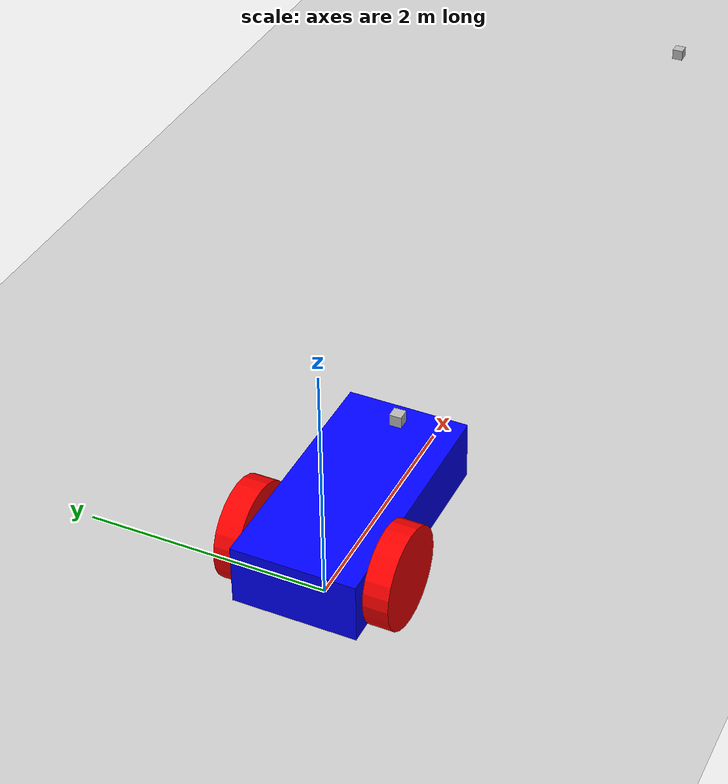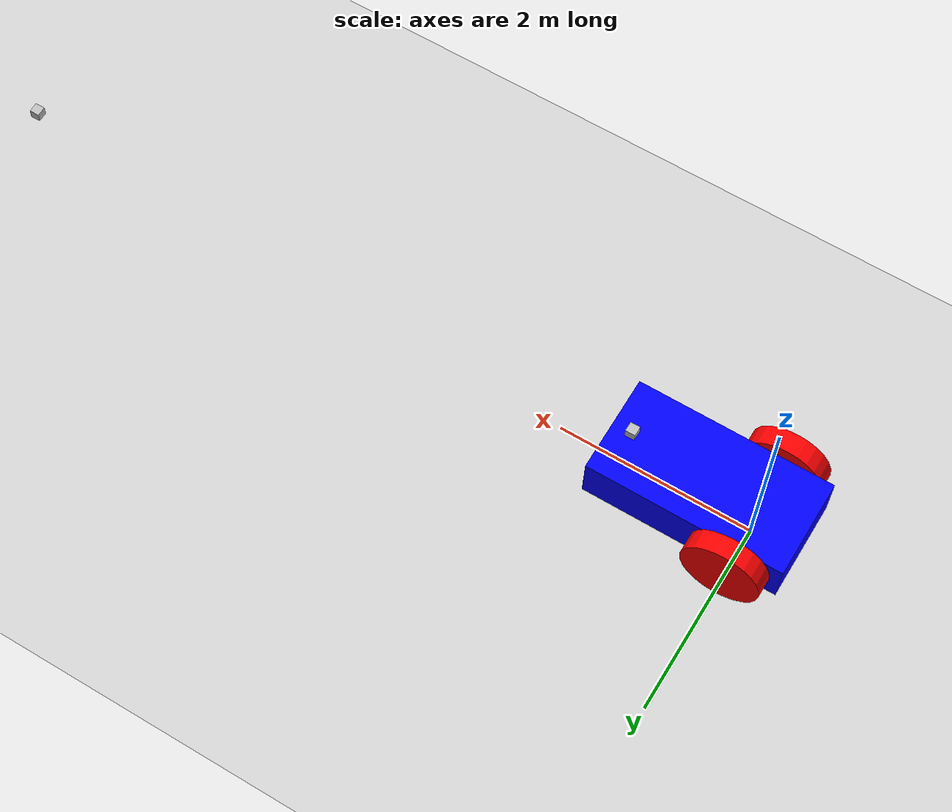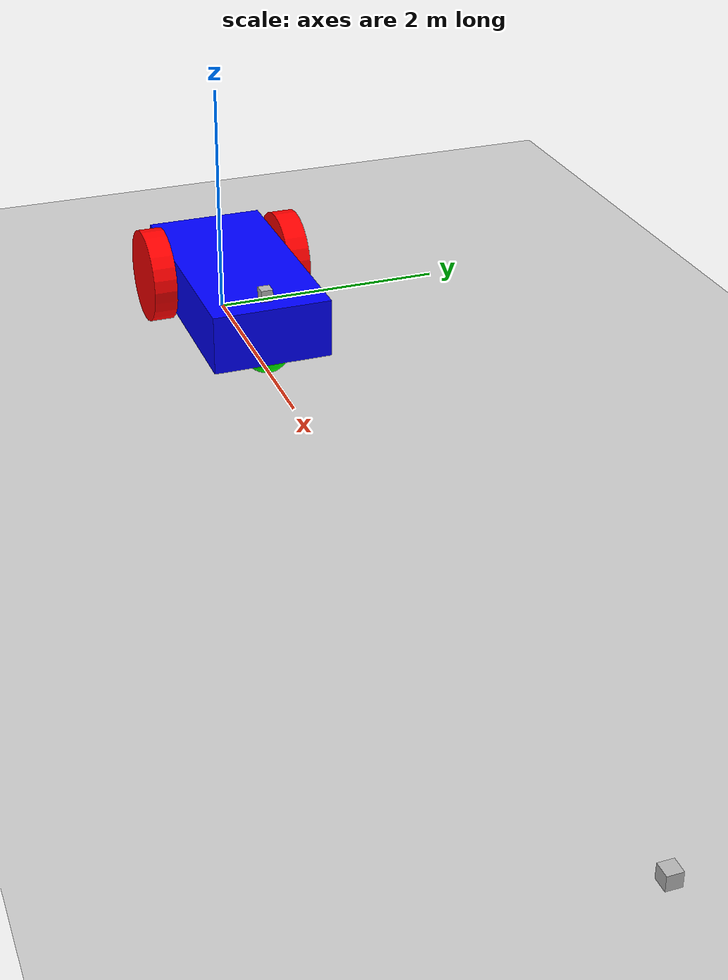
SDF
<sdf version="1.7">
 <world name="Moving_robot">
  <physics name="1ms" type="ignored">
   <max_step_size>0.001</max_step_size>
   <real_time_factor>1.0</real_time_factor>
  </physics>
  <plugin filename="libignition-gazebo-physics-system.so" name="ignition::gazebo::systems::Physics"/>
  <plugin filename="libignition-gazebo-user-commands-system.so" name="ignition::gazebo::systems::UserCommands"/>
  <plugin filename="libignition-gazebo-scene-broadcaster-system.so" name="ignition::gazebo::systems::SceneBroadcaster"/>
  <plugin filename="ignition-gazebo-sensors-system" name="ignition::gazebo::systems::Sensors">
   <render_engine>ogre2</render_engine>
  </plugin>
  <light type="directional" name="sun">
   <pose>0 0 10 0 0 0</pose>
   <diffuse>0.8 0.8 0.8 1</diffuse>
   <specular>0.2 0.2 0.2 1</specular>
   <attenuation>
    <range>1000</range>
    <constant>0.9</constant>
    <linear>0.01</linear>
    <quadratic>0.001</quadratic>
   </attenuation>
   <direction>-0.5 0.1 -0.9</direction>
  </light>
  <model name="ground_plane">
   <static>true</static>
   <link name="link">
    <collision name="collision"><geometry><plane><normal>0 0 1</normal></plane></geometry></collision>
    <visual name="visual">
     <geometry><plane><normal>0 0 1</normal><size>100 100</size></plane></geometry>
     <material>
      <ambient>0.8 0.8 0.8 1</ambient>
      <diffuse>0.8 0.8 0.8 1</diffuse>
      <specular>0.8 0.8 0.8 1</specular>
     </material>
     <plugin filename="ignition-gazebo-thermal-system" name="ignition::gazebo::systems::Thermal">
      <temperature>50.0</temperature>
     </plugin>
    </visual>
   </link>
  </model>
  <model name="rgbd_camera">
   <pose>8 0 0.5 0 0.0 3.14</pose>
   <static>true</static>
   <link name="link">
    <pose>0.05 0.05 0.05 0 0 0</pose>
    <collision name="collision"><geometry><box><size>0.1 0.1 0.1</size></box></geometry></collision>
    <visual name="visual"><geometry><box><size>0.1 0.1 0.1</size></box></geometry></visual>
    <sensor name="rgbd_camera" type="rgbd_camera">
     <camera>
      <horizontal_fov>1.047</horizontal_fov>
      <image><width>320</width><height>240</height></image>
      <clip><near>0.1</near><far>100</far></clip>
     </camera>
     <always_on>1</always_on>
     <update_rate>30</update_rate>
     <visualize>true</visualize>
     <topic>rgbd_camera</topic>
    </sensor>
   </link>
   <static>true</static>
  </model>
  <model name="camera_with_lidar">
   <pose>8 0 0.5 0 0.0 3.14</pose>
   <link name="link">
    <pose>0.05 0.05 0.05 0 0 0</pose>
    <inertial>
     <mass>0.1</mass>
     <inertia><ixx>0.000166667</ixx><iyy>0.000166667</iyy><izz>0.000166667</izz></inertia>
    </inertial>
    <collision name="collision"><geometry><box><size>0.1 0.1 0.1</size></box></geometry></collision>
    <visual name="visual"><geometry><box><size>0.1 0.1 0.1</size></box></geometry></visual>
    <sensor name="camera" type="camera">
     <camera>
      <horizontal_fov>1.047</horizontal_fov>
      <image><width>320</width><height>240</height></image>
      <clip><near>0.1</near><far>100</far></clip>
     </camera>
     <always_on>1</always_on>
     <update_rate>30</update_rate>
     <visualize>true</visualize>
     <topic>camera</topic>
    </sensor>
    <sensor name="depth_camera1" type="depth_camera">
     <update_rate>10</update_rate>
     <topic>depth_camera</topic>
     <camera>
      <horizontal_fov>1.05</horizontal_fov>
      <image><width>320</width><height>240</height><format>R_FLOAT32</format></image>
      <clip><near>0.1</near><far>100.0</far></clip>
     </camera>
    </sensor>
    <sensor name="gpu_lidar" type="gpu_lidar">
     <topic>lidar</topic>
     <update_rate>10</update_rate>
     <ray>
      <scan>
       <horizontal>
        <samples>320</samples>
        <resolution>1</resolution>
        <min_angle>-1.396263</min_angle>
        <max_angle>1.396263</max_angle>
       </horizontal>
       <vertical>
        <samples>80</samples>
        <resolution>1</resolution>
        <min_angle>0</min_angle>
        <max_angle>0.8</max_angle>
       </vertical>
      </scan>
      <range><min>0.08</min><max>18.0</max><resolution>0.01</resolution></range>
     </ray>
     <alwaysOn>1</alwaysOn>
     <visualize>true</visualize>
    </sensor>
   </link>
   <static>true</static>
  </model>
  <model name="vehicle_blue" canonical_link="chassis">
   <pose relative_to="world">0 0 0 0 0 0</pose>
   <link name="thermal_cam">
    <pose relative_to="__model__">1.3 0 0.7 0 0 0</pose>
    <pose>0.5 2.5 0.5 0 0 0</pose>
    <collision name="collision"><geometry><box><size>0.1 0.1 0.1</size></box></geometry></collision>
    <visual name="visual"><geometry><box><size>0.1 0.1 0.1</size></box></geometry></visual>
    <sensor name="thermal_camera" type="thermal_camera">
     <camera>
      <horizontal_fov>1.047</horizontal_fov>
      <image><width>320</width><height>240</height></image>
      <clip><near>0.1</near><far>100</far></clip>
     </camera>
     <always_on>1</always_on>
     <update_rate>30</update_rate>
     <visualize>true</visualize>
     <topic>thermal_camera</topic>
    </sensor>
    <sensor name="camera" type="camera">
     <camera>
      <horizontal_fov>1.047</horizontal_fov>
      <image><width>320</width><height>240</height></image>
      <clip><near>0.1</near><far>100</far></clip>
     </camera>
     <always_on>1</always_on>
     <update_rate>30</update_rate>
     <visualize>true</visualize>
     <topic>car_camera</topic>
    </sensor>
   </link>
   <link name="chassis">
    <pose relative_to="__model__">0.5 0 0.4 0 0 0</pose>
    <inertial>
     <mass>1.14395</mass>
     <inertia>
      <ixx>0.126164</ixx>
      <ixy>0</ixy>
      <ixz>0</ixz>
      <iyy>0.416519</iyy>
      <iyz>0</iyz>
      <izz>0.481014</izz>
     </inertia>
    </inertial>
    <visual name="visual">
     <geometry><box><size>2.0 1.0 0.5</size></box></geometry>
     <material>
      <ambient>0.0 0.0 1.0 1</ambient>
      <diffuse>0.0 0.0 1.0 1</diffuse>
      <specular>0.0 0.0 1.0 1</specular>
     </material>
    </visual>
    <collision name="collision"><geometry><box><size>2.0 1.0 0.5</size></box></geometry></collision>
   </link>
   <link name="left_wheel">
    <pose relative_to="chassis">-0.5 0.6 0 -1.5707 0 0</pose>
    <inertial>
     <mass>2</mass>
     <inertia><ixx>0.145833</ixx><ixy>0</ixy><ixz>0</ixz><iyy>0.145833</iyy><iyz>0</iyz><izz>0.125</izz></inertia>
    </inertial>
    <visual name="visual">
     <geometry><cylinder><radius>0.4</radius><length>0.2</length></cylinder></geometry>
     <material>
      <ambient>1.0 0.0 0.0 1</ambient>
      <diffuse>1.0 0.0 0.0 1</diffuse>
      <specular>1.0 0.0 0.0 1</specular>
     </material>
    </visual>
    <collision name="collision">
     <geometry><cylinder><radius>0.4</radius><length>0.2</length></cylinder></geometry>
    </collision>
   </link>
   <link name="right_wheel">
    <pose relative_to="chassis">-0.5 -0.6 0 -1.5707 0 0</pose>
    <inertial>
     <mass>1</mass>
     <inertia><ixx>0.145833</ixx><ixy>0</ixy><ixz>0</ixz><iyy>0.145833</iyy><iyz>0</iyz><izz>0.125</izz></inertia>
    </inertial>
    <visual name="visual">
     <geometry><cylinder><radius>0.4</radius><length>0.2</length></cylinder></geometry>
     <material>
      <ambient>1.0 0.0 0.0 1</ambient>
      <diffuse>1.0 0.0 0.0 1</diffuse>
      <specular>1.0 0.0 0.0 1</specular>
     </material>
    </visual>
    <collision name="collision">
     <geometry><cylinder><radius>0.4</radius><length>0.2</length></cylinder></geometry>
    </collision>
   </link>
   <frame name="caster_frame" attached_to="chassis"><pose>0.8 0 -0.2 0 0 0</pose></frame>
   <link name="caster">
    <pose relative_to="caster_frame"/>
    <inertial>
     <mass>1</mass>
     <inertia><ixx>0.1</ixx><ixy>0</ixy><ixz>0</ixz><iyy>0.1</iyy><iyz>0</iyz><izz>0.1</izz></inertia>
    </inertial>
    <visual name="visual">
     <geometry><sphere><radius>0.2</radius></sphere></geometry>
     <material>
      <ambient>0.0 1 0.0 1</ambient>
      <diffuse>0.0 1 0.0 1</diffuse>
      <specular>0.0 1 0.0 1</specular>
     </material>
    </visual>
    <collision name="collision"><geometry><sphere><radius>0.2</radius></sphere></geometry></collision>
   </link>
   <joint name="thermal_cam_joint" type="fixed">
    <pose relative_to="left_wheel"/>
    <parent>chassis</parent>
    <child>thermal_cam</child>
    <axis>
     <xyz expressed_in="__model__">0 1 0</xyz>
     <limit><lower>-1.79769e+308</lower><upper>1.79769e+308</upper></limit>
    </axis>
   </joint>
   <joint name="left_wheel_joint" type="revolute">
    <pose relative_to="left_wheel"/>
    <parent>chassis</parent>
    <child>left_wheel</child>
    <axis>
     <xyz expressed_in="__model__">0 1 0</xyz>
     <limit><lower>-1.79769e+308</lower><upper>1.79769e+308</upper></limit>
    </axis>
   </joint>
   <joint name="right_wheel_joint" type="revolute">
    <pose relative_to="right_wheel"/>
    <parent>chassis</parent>
    <child>right_wheel</child>
    <axis>
     <xyz expressed_in="__model__">0 1 0</xyz>
     <limit><lower>-1.79769e+308</lower><upper>1.79769e+308</upper></limit>
    </axis>
   </joint>
   <joint name="caster_wheel" type="ball"><parent>chassis</parent><child>caster</child></joint>
   <plugin filename="libignition-gazebo-diff-drive-system.so" name="ignition::gazebo::systems::DiffDrive">
    <left_joint>left_wheel_joint</left_joint>
    <right_joint>right_wheel_joint</right_joint>
    <wheel_separation>1.2</wheel_separation>
    <wheel_radius>0.4</wheel_radius>
    <odom_publish_frequency>1</odom_publish_frequency>
    <topic>cmd_vel</topic>
   </plugin>
  </model>
  <plugin filename="libignition-gazebo-triggered-publisher-system.so" name="ignition::gazebo::systems::TriggeredPublisher">
   <input type="ignition.msgs.Int32" topic="/keyboard/keypress"><match field="data">16777235</match></input>
   <output type="ignition.msgs.Twist" topic="/cmd_vel">linear: {x: 0.5}, angular: {z: 0.0}</output>
  </plugin>
  <plugin filename="libignition-gazebo-triggered-publisher-system.so" name="ignition::gazebo::systems::TriggeredPublisher">
   <input type="ignition.msgs.Int32" topic="/keyboard/keypress"><match field="data">16777237</match></input>
   <output type="ignition.msgs.Twist" topic="/cmd_vel">linear: {x: -0.5}, angular: {z: 0.0}</output>
  </plugin>
  <plugin filename="libignition-gazebo-triggered-publisher-system.so" name="ignition::gazebo::systems::TriggeredPublisher">
   <input type="ignition.msgs.Int32" topic="/keyboard/keypress"><match field="data">16777236</match></input>
   <output type="ignition.msgs.Twist" topic="/cmd_vel">linear: {x: 0.0}, angular: {z: -0.5}</output>
  </plugin>
  <plugin filename="libignition-gazebo-triggered-publisher-system.so" name="ignition::gazebo::systems::TriggeredPublisher">
   <input type="ignition.msgs.Int32" topic="/keyboard/keypress"><match field="data">16777234</match></input>
   <output type="ignition.msgs.Twist" topic="/cmd_vel">linear: {x: 0.0}, angular: {z: 0.5}</output>
  </plugin>
 </world>
</sdf>
